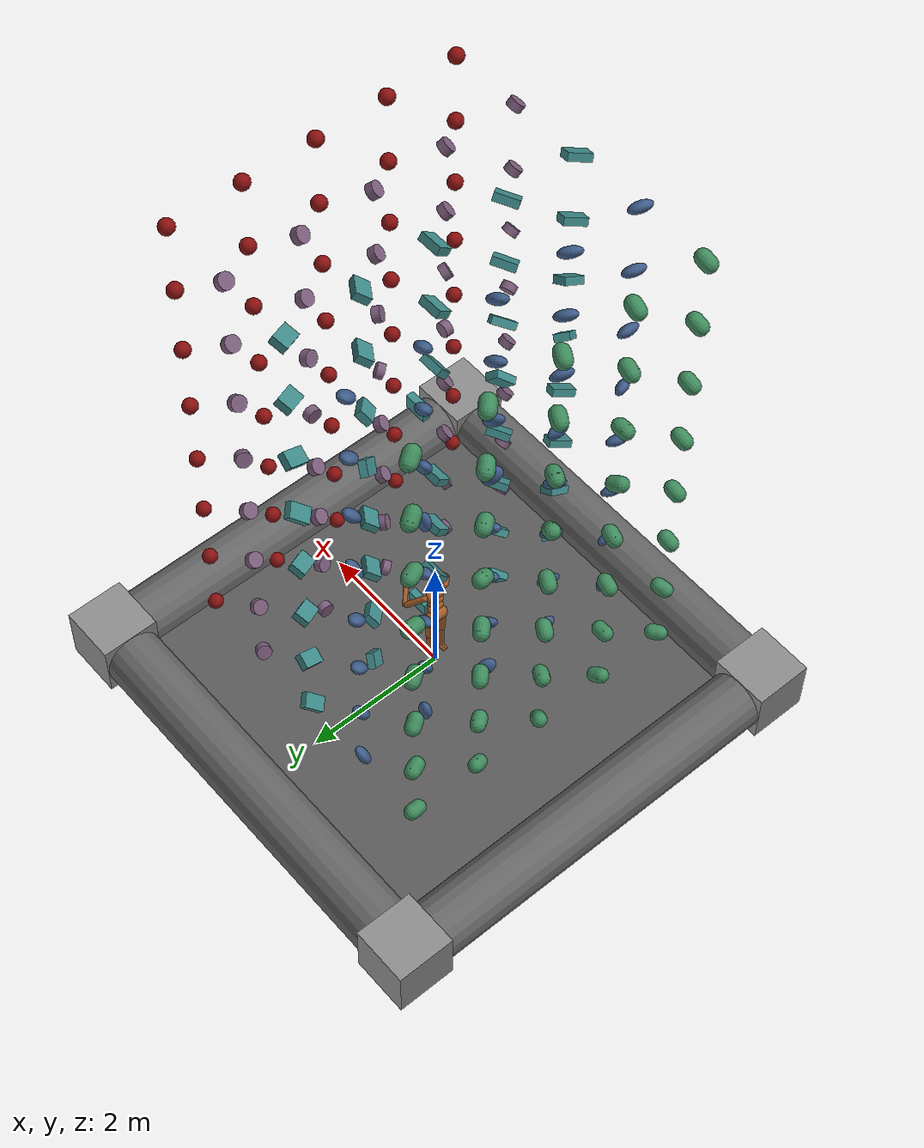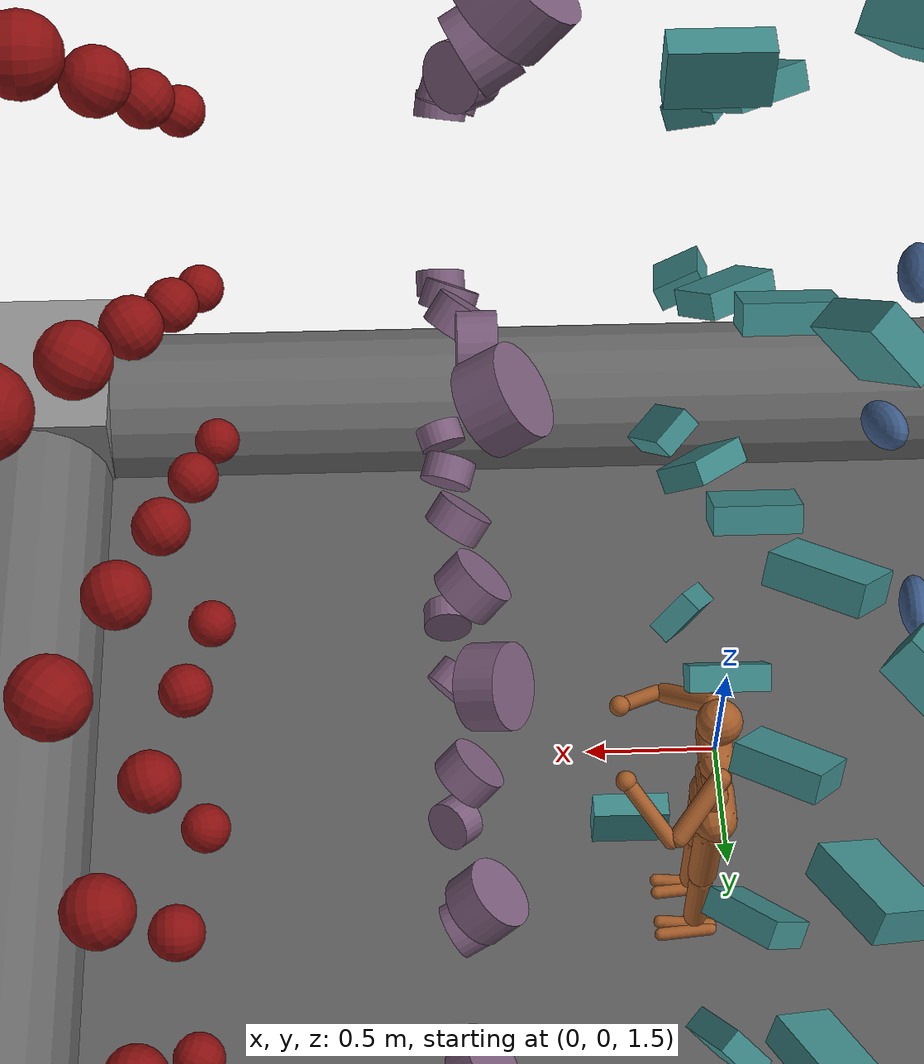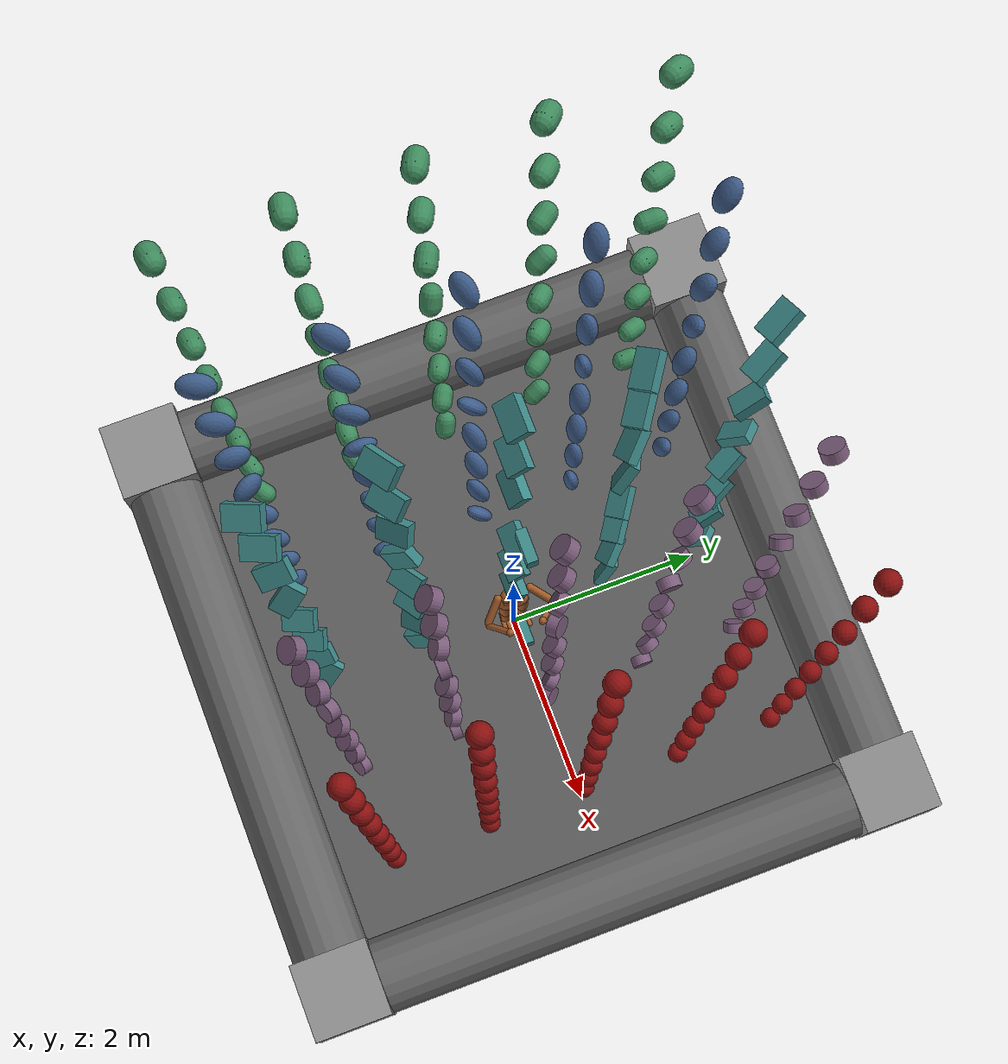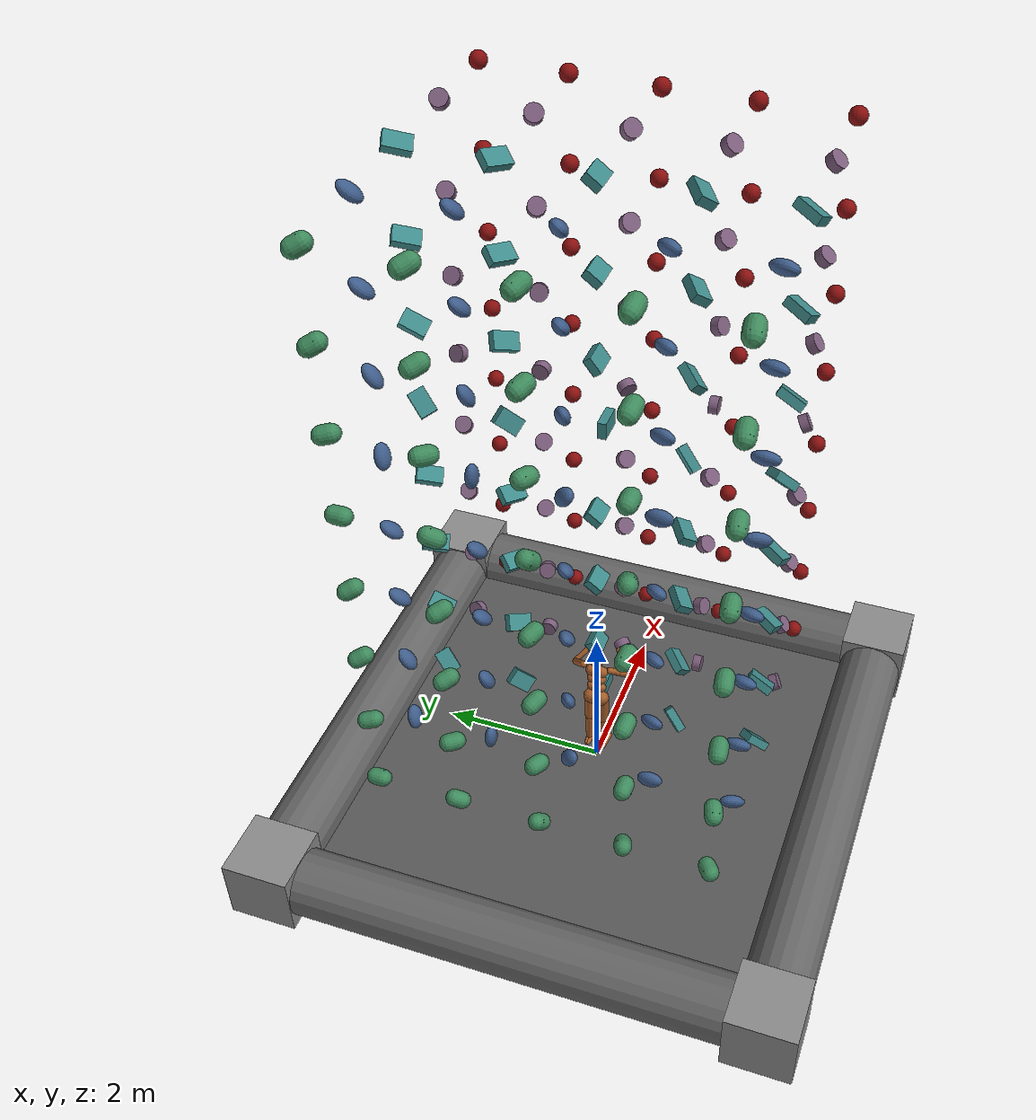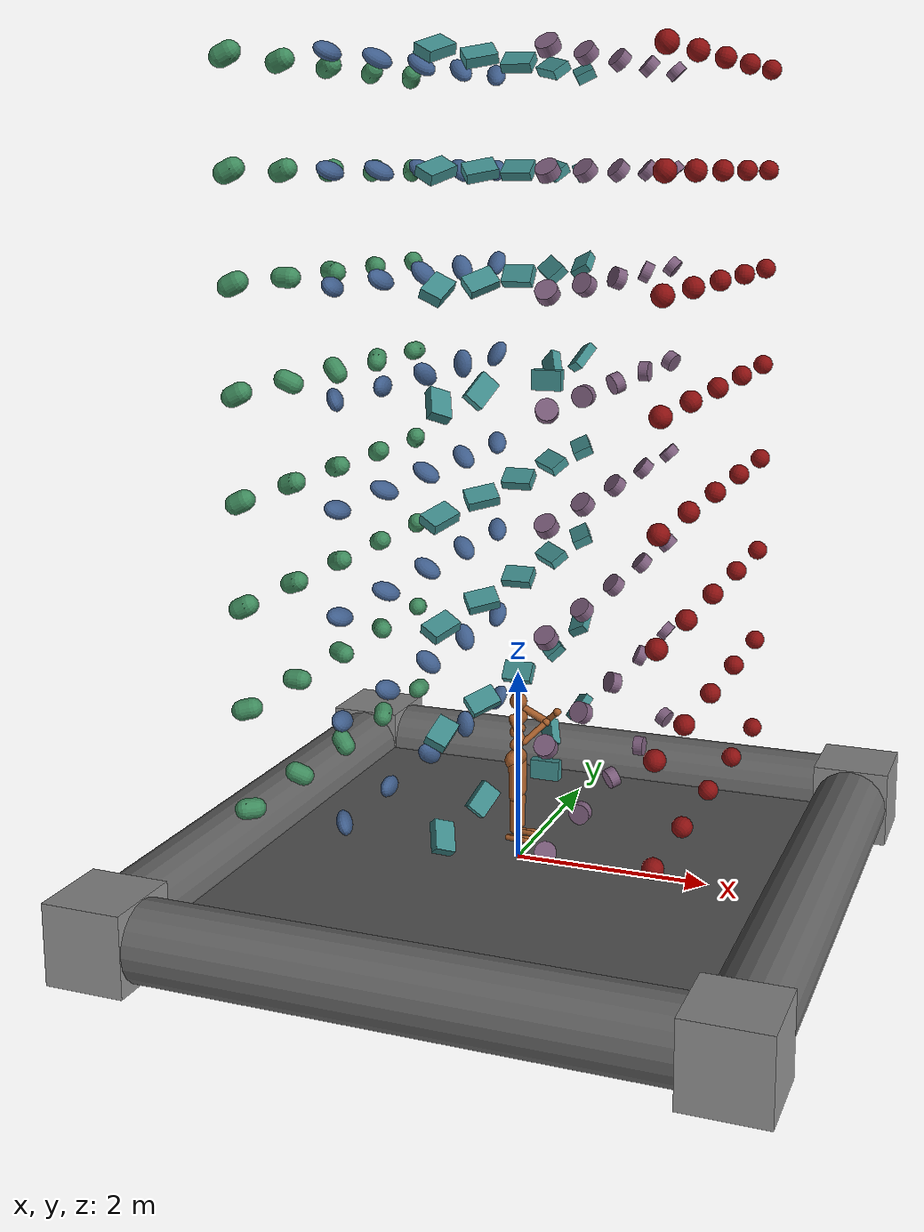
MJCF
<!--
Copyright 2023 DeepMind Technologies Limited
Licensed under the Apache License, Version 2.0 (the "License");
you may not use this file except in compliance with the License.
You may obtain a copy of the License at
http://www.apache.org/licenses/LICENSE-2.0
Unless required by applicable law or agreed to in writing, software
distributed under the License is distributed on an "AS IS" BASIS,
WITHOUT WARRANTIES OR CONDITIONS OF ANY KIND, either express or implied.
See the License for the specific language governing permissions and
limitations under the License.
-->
<mujoco model="Humanoid and 200 objects">
<!-- Degree of Freedom: 627
     Actuators: 21

     Humanoid and 200 free primitive objects.
-->
  <include file="humanoid_body.xml"/>

  <option timestep="0.005"/>

  <size memory="1000M"/>

  <default>
    <geom solimp=".9 .9 .01"/>
    <default class="object1">
      <geom type="capsule" material="object1" size="0.1 0.05"/>
    </default>
    <default class="object2">
      <geom type="ellipsoid" material="object2" size="0.15 0.1 0.07"/>
    </default>
    <default class="object3">
      <geom type="box" material="object3" size="0.15 0.1 0.05"/>
    </default>
    <default class="object4">
      <geom type="cylinder" material="object4" size="0.1 0.05" condim="4" friction="1 .01 .01"/>
    </default>
    <default class="object5">
      <geom type="sphere" material="object5" size="0.1"/>
    </default>
    <default class="border">
      <geom type="capsule" size="0.4" rgba=".4 .4 .4 1"/>
    </default>
    <default class="borderpost">
      <geom type="box" size="0.41 0.41 0.41" rgba=".55 .55 .55 1"/>
    </default>
  </default>

  <asset>
    <texture type="skybox" builtin="gradient" width="512" height="512" rgb1=".4 .6 .8" rgb2="0 0 0"/>
    <texture name="texgeom" type="cube" builtin="flat" mark="cross" width="128" height="128"
             rgb1="0.6 0.6 0.6" rgb2="0.6 0.6 0.6" markrgb="1 1 1"/>
    <texture name="texplane" type="2d" builtin="checker" rgb1=".4 .4 .4" rgb2=".6 .6 .6"
             width="512" height="512"/>
    <material name='MatPlane' reflectance='0.3' texture="texplane" texrepeat="1 1" texuniform="true"
              rgba=".7 .7 .7 1"/>
    <material name='object1' texture="texgeom" texuniform="true" rgba=".4 .9 .6 1" />
    <material name='object2' texture="texgeom" texuniform="true" rgba=".4 .6 .9 1" />
    <material name='object3' texture="texgeom" texuniform="true" rgba=".4 .9 .9 1" />
    <material name='object4' texture="texgeom" texuniform="true" rgba=".8 .6 .8 1" />
    <material name='object5' texture="texgeom" texuniform="true" rgba=".9 .1 .1 1" />
  </asset>

  <visual>
    <quality shadowsize="4096" offsamples="8"/>
    <map znear="0.1" force="0.05"/>
  </visual>

  <statistic extent="4"/>

  <worldbody>
    <light directional="true" diffuse=".8 .8 .8" pos="0 0 10" dir="0 0 -10"/>
    <geom name="floor" type="plane" size="3 3 .5" material="MatPlane"/>
    <geom class="border" fromto="-3 3 0 3 3 0"  />
    <geom class="border" fromto="-3 -3 0 3 -3 0"  />
    <geom class="border" fromto="3 3 0 3 -3 0"  />
    <geom class="border" fromto="-3 3 0 -3 -3 0"  />
    <geom class="borderpost" pos="3 3 0"/>
    <geom class="borderpost" pos="-3 3 0"/>
    <geom class="borderpost" pos="3 -3 0"/>
    <geom class="borderpost" pos="-3 -3 0"/>

    <body pos="-2 -2 1" quat="-0.632456 -0.632456 0.316228 0.316228">
      <freejoint/>
      <geom class="object1"/>
    </body>
    <body pos="-2 -2 2" quat="-0.5547 -0.5547 0.5547 0.27735">
      <freejoint/>
      <geom class="object1"/>
    </body>
    <body pos="-2 -2 3" quat="-0.471405 -0.471405 0.707107 0.235702">
      <freejoint/>
      <geom class="object1"/>
    </body>
    <body pos="-2 -2 4" quat="-0.471405 -0.471405 0.707107 0.235702">
      <freejoint/>
      <geom class="object1"/>
    </body>
    <body pos="-2 -2 5" quat="-0.471405 -0.471405 0.707107 0.235702">
      <freejoint/>
      <geom class="object1"/>
    </body>
    <body pos="-2 -2 6" quat="-0.471405 -0.471405 0.707107 0.235702">
      <freejoint/>
      <geom class="object1"/>
    </body>
    <body pos="-2 -2 7" quat="-0.471405 -0.471405 0.707107 0.235702">
      <freejoint/>
      <geom class="object1"/>
    </body>
    <body pos="-2 -2 8" quat="-0.471405 -0.471405 0.707107 0.235702">
      <freejoint/>
      <geom class="object1"/>
    </body>

    <body pos="-2 -1 1" quat="-0.755929 -0.377964 0.377964 0.377964">
      <freejoint/>
      <geom class="object1"/>
    </body>
    <body pos="-2 -1 2" quat="-0.632456 -0.316228 0.632456 0.316228">
      <freejoint/>
      <geom class="object1"/>
    </body>
    <body pos="-2 -1 3" quat="-0.516398 -0.258199 0.774597 0.258199">
      <freejoint/>
      <geom class="object1"/>
    </body>
    <body pos="-2 -1 4" quat="-0.516398 -0.258199 0.774597 0.258199">
      <freejoint/>
      <geom class="object1"/>
    </body>
    <body pos="-2 -1 5" quat="-0.755929 -0.377964 0.377964 0.377964">
      <freejoint/>
      <geom class="object1"/>
    </body>
    <body pos="-2 -1 6" quat="-0.632456 -0.316228 0.632456 0.316228">
      <freejoint/>
      <geom class="object1"/>
    </body>
    <body pos="-2 -1 7" quat="-0.516398 -0.258199 0.774597 0.258199">
      <freejoint/>
      <geom class="object1"/>
    </body>
    <body pos="-2 -1 8" quat="-0.516398 -0.258199 0.774597 0.258199">
      <freejoint/>
      <geom class="object1"/>
    </body>

    <body pos="-2 0 1" quat="-0.816497 0 0.408248 0.408248">
      <freejoint/>
      <geom class="object1"/>
    </body>
    <body pos="-2 0 2" quat="-0.666667 0 0.666667 0.333333">
      <freejoint/>
      <geom class="object1"/>
    </body>
    <body pos="-2 0 3" quat="-0.534522 0 0.801784 0.267261">
      <freejoint/>
      <geom class="object1"/>
    </body>
    <body pos="-2 0 4" quat="-0.534522 0 0.801784 0.267261">
      <freejoint/>
      <geom class="object1"/>
    </body>
    <body pos="-2 0 5" quat="-0.816497 0 0.408248 0.408248">
      <freejoint/>
      <geom class="object1"/>
    </body>
    <body pos="-2 0 6" quat="-0.666667 0 0.666667 0.333333">
      <freejoint/>
      <geom class="object1"/>
    </body>
    <body pos="-2 0 7" quat="-0.534522 0 0.801784 0.267261">
      <freejoint/>
      <geom class="object1"/>
    </body>
    <body pos="-2 0 8" quat="-0.534522 0 0.801784 0.267261">
      <freejoint/>
      <geom class="object1"/>
    </body>

    <body pos="-2 1 1" quat="-0.755929 0.377964 0.377964 0.377964">
      <freejoint/>
      <geom class="object1"/>
    </body>
    <body pos="-2 1 2" quat="-0.632456 0.316228 0.632456 0.316228">
      <freejoint/>
      <geom class="object1"/>
    </body>
    <body pos="-2 1 3" quat="-0.516398 0.258199 0.774597 0.258199">
      <freejoint/>
      <geom class="object1"/>
    </body>
    <body pos="-2 1 4" quat="-0.516398 0.258199 0.774597 0.258199">
      <freejoint/>
      <geom class="object1"/>
    </body>
    <body pos="-2 1 5" quat="-0.755929 0.377964 0.377964 0.377964">
      <freejoint/>
      <geom class="object1"/>
    </body>
    <body pos="-2 1 6" quat="-0.632456 0.316228 0.632456 0.316228">
      <freejoint/>
      <geom class="object1"/>
    </body>
    <body pos="-2 1 7" quat="-0.516398 0.258199 0.774597 0.258199">
      <freejoint/>
      <geom class="object1"/>
    </body>
    <body pos="-2 1 8" quat="-0.516398 0.258199 0.774597 0.258199">
      <freejoint/>
      <geom class="object1"/>
    </body>

    <body pos="-2 2 1" quat="-0.632456 0.632456 0.316228 0.316228">
      <freejoint/>
      <geom class="object1"/>
    </body>
    <body pos="-2 2 2" quat="-0.5547 0.5547 0.5547 0.27735">
      <freejoint/>
      <geom class="object1"/>
    </body>
    <body pos="-2 2 3" quat="-0.471405 0.471405 0.707107 0.235702">
      <freejoint/>
      <geom class="object1"/>
    </body>
    <body pos="-2 2 4" quat="-0.471405 0.471405 0.707107 0.235702">
      <freejoint/>
      <geom class="object1"/>
    </body>
    <body pos="-2 2 5" quat="-0.632456 0.632456 0.316228 0.316228">
      <freejoint/>
      <geom class="object1"/>
    </body>
    <body pos="-2 2 6" quat="-0.5547 0.5547 0.5547 0.27735">
      <freejoint/>
      <geom class="object1"/>
    </body>
    <body pos="-2 2 7" quat="-0.471405 0.471405 0.707107 0.235702">
      <freejoint/>
      <geom class="object1"/>
    </body>
    <body pos="-2 2 8" quat="-0.471405 0.471405 0.707107 0.235702">
      <freejoint/>
      <geom class="object1"/>
    </body>

    <body pos="-1 -2 1" quat="-0.377964 -0.755929 0.377964 0.377964">
      <freejoint/>
      <geom class="object2"/>
    </body>
    <body pos="-1 -2 2" quat="-0.316228 -0.632456 0.632456 0.316228">
      <freejoint/>
      <geom class="object2"/>
    </body>
    <body pos="-1 -2 3" quat="-0.258199 -0.516398 0.774597 0.258199">
      <freejoint/>
      <geom class="object2"/>
    </body>
    <body pos="-1 -2 4" quat="-0.258199 -0.516398 0.774597 0.258199">
      <freejoint/>
      <geom class="object2"/>
    </body>
    <body pos="-1 -2 5" quat="-0.377964 -0.755929 0.377964 0.377964">
      <freejoint/>
      <geom class="object2"/>
    </body>
    <body pos="-1 -2 6" quat="-0.316228 -0.632456 0.632456 0.316228">
      <freejoint/>
      <geom class="object2"/>
    </body>
    <body pos="-1 -2 7" quat="-0.258199 -0.516398 0.774597 0.258199">
      <freejoint/>
      <geom class="object2"/>
    </body>
    <body pos="-1 -2 8" quat="-0.258199 -0.516398 0.774597 0.258199">
      <freejoint/>
      <geom class="object2"/>
    </body>

    <body pos="-1 -1 1" quat="-0.5 -0.5 0.5 0.5">
      <freejoint/>
      <geom class="object2"/>
    </body>
    <body pos="-1 -1 2" quat="-0.377964 -0.377964 0.755929 0.377964">
      <freejoint/>
      <geom class="object2"/>
    </body>
    <body pos="-1 -1 3" quat="-0.288675 -0.288675 0.866025 0.288675">
      <freejoint/>
      <geom class="object2"/>
    </body>
    <body pos="-1 -1 4" quat="-0.288675 -0.288675 0.866025 0.288675">
      <freejoint/>
      <geom class="object2"/>
    </body>
    <body pos="-1 -1 5" quat="-0.5 -0.5 0.5 0.5">
      <freejoint/>
      <geom class="object2"/>
    </body>
    <body pos="-1 -1 6" quat="-0.377964 -0.377964 0.755929 0.377964">
      <freejoint/>
      <geom class="object2"/>
    </body>
    <body pos="-1 -1 7" quat="-0.288675 -0.288675 0.866025 0.288675">
      <freejoint/>
      <geom class="object2"/>
    </body>
    <body pos="-1 -1 8" quat="-0.288675 -0.288675 0.866025 0.288675">
      <freejoint/>
      <geom class="object2"/>
    </body>

    <body pos="-1 0 1" quat="-0.57735 0 0.57735 0.57735">
      <freejoint/>
      <geom class="object2"/>
    </body>
    <body pos="-1 0 2" quat="-0.408248 0 0.816497 0.408248">
      <freejoint/>
      <geom class="object2"/>
    </body>
    <body pos="-1 0 3" quat="-0.301511 0 0.904534 0.301511">
      <freejoint/>
      <geom class="object2"/>
    </body>
    <body pos="-1 0 4" quat="-0.301511 0 0.904534 0.301511">
      <freejoint/>
      <geom class="object2"/>
    </body>
    <body pos="-1 0 5" quat="-0.57735 0 0.57735 0.57735">
      <freejoint/>
      <geom class="object2"/>
    </body>
    <body pos="-1 0 6" quat="-0.408248 0 0.816497 0.408248">
      <freejoint/>
      <geom class="object2"/>
    </body>
    <body pos="-1 0 7" quat="-0.301511 0 0.904534 0.301511">
      <freejoint/>
      <geom class="object2"/>
    </body>
    <body pos="-1 0 8" quat="-0.301511 0 0.904534 0.301511">
      <freejoint/>
      <geom class="object2"/>
    </body>

    <body pos="-1 1 1" quat="-0.5 0.5 0.5 0.5">
      <freejoint/>
      <geom class="object2"/>
    </body>
    <body pos="-1 1 2" quat="-0.377964 0.377964 0.755929 0.377964">
      <freejoint/>
      <geom class="object2"/>
    </body>
    <body pos="-1 1 3" quat="-0.288675 0.288675 0.866025 0.288675">
      <freejoint/>
      <geom class="object2"/>
    </body>
    <body pos="-1 1 4" quat="-0.288675 0.288675 0.866025 0.288675">
      <freejoint/>
      <geom class="object2"/>
    </body>
    <body pos="-1 1 5" quat="-0.5 0.5 0.5 0.5">
      <freejoint/>
      <geom class="object2"/>
    </body>
    <body pos="-1 1 6" quat="-0.377964 0.377964 0.755929 0.377964">
      <freejoint/>
      <geom class="object2"/>
    </body>
    <body pos="-1 1 7" quat="-0.288675 0.288675 0.866025 0.288675">
      <freejoint/>
      <geom class="object2"/>
    </body>
    <body pos="-1 1 8" quat="-0.288675 0.288675 0.866025 0.288675">
      <freejoint/>
      <geom class="object2"/>
    </body>

    <body pos="-1 2 1" quat="-0.377964 0.755929 0.377964 0.377964">
      <freejoint/>
      <geom class="object2"/>
    </body>
    <body pos="-1 2 2" quat="-0.316228 0.632456 0.632456 0.316228">
      <freejoint/>
      <geom class="object2"/>
    </body>
    <body pos="-1 2 3" quat="-0.258199 0.516398 0.774597 0.258199">
      <freejoint/>
      <geom class="object2"/>
    </body>
    <body pos="-1 2 4" quat="-0.258199 0.516398 0.774597 0.258199">
      <freejoint/>
      <geom class="object2"/>
    </body>
    <body pos="-1 2 5" quat="-0.377964 0.755929 0.377964 0.377964">
      <freejoint/>
      <geom class="object2"/>
    </body>
    <body pos="-1 2 6" quat="-0.316228 0.632456 0.632456 0.316228">
      <freejoint/>
      <geom class="object2"/>
    </body>
    <body pos="-1 2 7" quat="-0.258199 0.516398 0.774597 0.258199">
      <freejoint/>
      <geom class="object2"/>
    </body>
    <body pos="-1 2 8" quat="-0.258199 0.516398 0.774597 0.258199">
      <freejoint/>
      <geom class="object2"/>
    </body>

    <body pos="0 -2 1" quat="0 -0.816497 0.408248 0.408248">
      <freejoint/>
      <geom class="object3"/>
    </body>
    <body pos="0 -2 2" quat="0 -0.666667 0.666667 0.333333">
      <freejoint/>
      <geom class="object3"/>
    </body>
    <body pos="0 -2 3" quat="0 -0.534522 0.801784 0.267261">
      <freejoint/>
      <geom class="object3"/>
    </body>
    <body pos="0 -2 4" quat="0 -0.534522 0.801784 0.267261">
      <freejoint/>
      <geom class="object3"/>
    </body>
    <body pos="0 -2 5" quat="0 -0.816497 0.408248 0.408248">
      <freejoint/>
      <geom class="object3"/>
    </body>
    <body pos="0 -2 6" quat="0 -0.666667 0.666667 0.333333">
      <freejoint/>
      <geom class="object3"/>
    </body>
    <body pos="0 -2 7" quat="0 -0.534522 0.801784 0.267261">
      <freejoint/>
      <geom class="object3"/>
    </body>
    <body pos="0 -2 8" quat="0 -0.534522 0.801784 0.267261">
      <freejoint/>
      <geom class="object3"/>
    </body>

    <body pos="0 -1 1" quat="0 -0.57735 0.57735 0.57735">
      <freejoint/>
      <geom class="object3"/>
    </body>
    <body pos="0 -1 2" quat="0 -0.408248 0.816497 0.408248">
      <freejoint/>
      <geom class="object3"/>
    </body>
    <body pos="0 -1 3" quat="0 -0.301511 0.904534 0.301511">
      <freejoint/>
      <geom class="object3"/>
    </body>
    <body pos="0 -1 4" quat="0 -0.301511 0.904534 0.301511">
      <freejoint/>
      <geom class="object3"/>
    </body>
    <body pos="0 -1 5" quat="0 -0.57735 0.57735 0.57735">
      <freejoint/>
      <geom class="object3"/>
    </body>
    <body pos="0 -1 6" quat="0 -0.408248 0.816497 0.408248">
      <freejoint/>
      <geom class="object3"/>
    </body>
    <body pos="0 -1 7" quat="0 -0.301511 0.904534 0.301511">
      <freejoint/>
      <geom class="object3"/>
    </body>
    <body pos="0 -1 8" quat="0 -0.301511 0.904534 0.301511">
      <freejoint/>
      <geom class="object3"/>
    </body>

    <body pos="0.3 0 1" quat="0 0 0.707107 0.707107">
      <freejoint/>
      <geom class="object3"/>
    </body>
    <body pos="0 0 2" quat="0 0 0.894427 0.447214">
      <freejoint/>
      <geom class="object3"/>
    </body>
    <body pos="0 0 3" quat="0 0 0.948683 0.316228">
      <freejoint/>
      <geom class="object3"/>
    </body>
    <body pos="0 0 4" quat="0 0 0.948683 0.316228">
      <freejoint/>
      <geom class="object3"/>
    </body>
    <body pos="0.3 0 5" quat="0 0 0.707107 0.707107">
      <freejoint/>
      <geom class="object3"/>
    </body>
    <body pos="0 0 6" quat="0 0 0.894427 0.447214">
      <freejoint/>
      <geom class="object3"/>
    </body>
    <body pos="0 0 7" quat="0 0 0.948683 0.316228">
      <freejoint/>
      <geom class="object3"/>
    </body>
    <body pos="0 0 8" quat="0 0 0.948683 0.316228">
      <freejoint/>
      <geom class="object3"/>
    </body>

    <body pos="0 1 1" quat="0 0.57735 0.57735 0.57735">
      <freejoint/>
      <geom class="object3"/>
    </body>
    <body pos="0 1 2" quat="0 0.408248 0.816497 0.408248">
      <freejoint/>
      <geom class="object3"/>
    </body>
    <body pos="0 1 3" quat="0 0.301511 0.904534 0.301511">
      <freejoint/>
      <geom class="object3"/>
    </body>
    <body pos="0 1 4" quat="0 0.301511 0.904534 0.301511">
      <freejoint/>
      <geom class="object3"/>
    </body>
    <body pos="0 1 5" quat="0 0.57735 0.57735 0.57735">
      <freejoint/>
      <geom class="object3"/>
    </body>
    <body pos="0 1 6" quat="0 0.408248 0.816497 0.408248">
      <freejoint/>
      <geom class="object3"/>
    </body>
    <body pos="0 1 7" quat="0 0.301511 0.904534 0.301511">
      <freejoint/>
      <geom class="object3"/>
    </body>
    <body pos="0 1 8" quat="0 0.301511 0.904534 0.301511">
      <freejoint/>
      <geom class="object3"/>
    </body>

    <body pos="0 2 1" quat="0 0.816497 0.408248 0.408248">
      <freejoint/>
      <geom class="object3"/>
    </body>
    <body pos="0 2 2" quat="0 0.666667 0.666667 0.333333">
      <freejoint/>
      <geom class="object3"/>
    </body>
    <body pos="0 2 3" quat="0 0.534522 0.801784 0.267261">
      <freejoint/>
      <geom class="object3"/>
    </body>
    <body pos="0 2 4" quat="0 0.534522 0.801784 0.267261">
      <freejoint/>
      <geom class="object3"/>
    </body>
    <body pos="0 2 5" quat="0 0.816497 0.408248 0.408248">
      <freejoint/>
      <geom class="object3"/>
    </body>
    <body pos="0 2 6" quat="0 0.666667 0.666667 0.333333">
      <freejoint/>
      <geom class="object3"/>
    </body>
    <body pos="0 2 7" quat="0 0.534522 0.801784 0.267261">
      <freejoint/>
      <geom class="object3"/>
    </body>
    <body pos="0 2 8" quat="0 0.534522 0.801784 0.267261">
      <freejoint/>
      <geom class="object3"/>
    </body>

    <body pos="1 -2 1" quat="0.377964 -0.755929 0.377964 0.377964">
      <freejoint/>
      <geom class="object4"/>
    </body>
    <body pos="1 -2 2" quat="0.316228 -0.632456 0.632456 0.316228">
      <freejoint/>
      <geom class="object4"/>
    </body>
    <body pos="1 -2 3" quat="0.258199 -0.516398 0.774597 0.258199">
      <freejoint/>
      <geom class="object4"/>
    </body>
    <body pos="1 -2 4" quat="0.258199 -0.516398 0.774597 0.258199">
      <freejoint/>
      <geom class="object4"/>
    </body>
    <body pos="1 -2 5" quat="0.377964 -0.755929 0.377964 0.377964">
      <freejoint/>
      <geom class="object4"/>
    </body>
    <body pos="1 -2 6" quat="0.316228 -0.632456 0.632456 0.316228">
      <freejoint/>
      <geom class="object4"/>
    </body>
    <body pos="1 -2 7" quat="0.258199 -0.516398 0.774597 0.258199">
      <freejoint/>
      <geom class="object4"/>
    </body>
    <body pos="1 -2 8" quat="0.258199 -0.516398 0.774597 0.258199">
      <freejoint/>
      <geom class="object4"/>
    </body>

    <body pos="1 -1 1" quat="0.5 -0.5 0.5 0.5">
      <freejoint/>
      <geom class="object4"/>
    </body>
    <body pos="1 -1 2" quat="0.377964 -0.377964 0.755929 0.377964">
      <freejoint/>
      <geom class="object4"/>
    </body>
    <body pos="1 -1 3" quat="0.288675 -0.288675 0.866025 0.288675">
      <freejoint/>
      <geom class="object4"/>
    </body>
    <body pos="1 -1 4" quat="0.288675 -0.288675 0.866025 0.288675">
      <freejoint/>
      <geom class="object4"/>
    </body>
    <body pos="1 -1 5" quat="0.5 -0.5 0.5 0.5">
      <freejoint/>
      <geom class="object4"/>
    </body>
    <body pos="1 -1 6" quat="0.377964 -0.377964 0.755929 0.377964">
      <freejoint/>
      <geom class="object4"/>
    </body>
    <body pos="1 -1 7" quat="0.288675 -0.288675 0.866025 0.288675">
      <freejoint/>
      <geom class="object4"/>
    </body>
    <body pos="1 -1 8" quat="0.288675 -0.288675 0.866025 0.288675">
      <freejoint/>
      <geom class="object4"/>
    </body>

    <body pos="1 0 1" quat="0.57735 0 0.57735 0.57735">
      <freejoint/>
      <geom class="object4"/>
    </body>
    <body pos="1 0 2" quat="0.408248 0 0.816497 0.408248">
      <freejoint/>
      <geom class="object4"/>
    </body>
    <body pos="1 0 3" quat="0.301511 0 0.904534 0.301511">
      <freejoint/>
      <geom class="object4"/>
    </body>
    <body pos="1 0 4" quat="0.301511 0 0.904534 0.301511">
      <freejoint/>
      <geom class="object4"/>
    </body>
    <body pos="1 0 5" quat="0.57735 0 0.57735 0.57735">
      <freejoint/>
      <geom class="object4"/>
    </body>
    <body pos="1 0 6" quat="0.408248 0 0.816497 0.408248">
      <freejoint/>
      <geom class="object4"/>
    </body>
    <body pos="1 0 7" quat="0.301511 0 0.904534 0.301511">
      <freejoint/>
      <geom class="object4"/>
    </body>
    <body pos="1 0 8" quat="0.301511 0 0.904534 0.301511">
      <freejoint/>
      <geom class="object4"/>
    </body>

    <body pos="1 1 1" quat="0.5 0.5 0.5 0.5">
      <freejoint/>
      <geom class="object4"/>
    </body>
    <body pos="1 1 2" quat="0.377964 0.377964 0.755929 0.377964">
      <freejoint/>
      <geom class="object4"/>
    </body>
    <body pos="1 1 3" quat="0.288675 0.288675 0.866025 0.288675">
      <freejoint/>
      <geom class="object4"/>
    </body>
    <body pos="1 1 4" quat="0.288675 0.288675 0.866025 0.288675">
      <freejoint/>
      <geom class="object4"/>
    </body>
    <body pos="1 1 5" quat="0.5 0.5 0.5 0.5">
      <freejoint/>
      <geom class="object4"/>
    </body>
    <body pos="1 1 6" quat="0.377964 0.377964 0.755929 0.377964">
      <freejoint/>
      <geom class="object4"/>
    </body>
    <body pos="1 1 7" quat="0.288675 0.288675 0.866025 0.288675">
      <freejoint/>
      <geom class="object4"/>
    </body>
    <body pos="1 1 8" quat="0.288675 0.288675 0.866025 0.288675">
      <freejoint/>
      <geom class="object4"/>
    </body>

    <body pos="1 2 1" quat="0.377964 0.755929 0.377964 0.377964">
      <freejoint/>
      <geom class="object4"/>
    </body>
    <body pos="1 2 2" quat="0.316228 0.632456 0.632456 0.316228">
      <freejoint/>
      <geom class="object4"/>
    </body>
    <body pos="1 2 3" quat="0.258199 0.516398 0.774597 0.258199">
      <freejoint/>
      <geom class="object4"/>
    </body>
    <body pos="1 2 4" quat="0.258199 0.516398 0.774597 0.258199">
      <freejoint/>
      <geom class="object4"/>
    </body>
    <body pos="1 2 5" quat="0.377964 0.755929 0.377964 0.377964">
      <freejoint/>
      <geom class="object4"/>
    </body>
    <body pos="1 2 6" quat="0.316228 0.632456 0.632456 0.316228">
      <freejoint/>
      <geom class="object4"/>
    </body>
    <body pos="1 2 7" quat="0.258199 0.516398 0.774597 0.258199">
      <freejoint/>
      <geom class="object4"/>
    </body>
    <body pos="1 2 8" quat="0.258199 0.516398 0.774597 0.258199">
      <freejoint/>
      <geom class="object4"/>
    </body>

    <body pos="2 -2 1" quat="0.632456 -0.632456 0.316228 0.316228">
      <freejoint/>
      <geom class="object5"/>
    </body>
    <body pos="2 -2 2" quat="0.5547 -0.5547 0.5547 0.27735">
      <freejoint/>
      <geom class="object5"/>
    </body>
    <body pos="2 -2 3" quat="0.471405 -0.471405 0.707107 0.235702">
      <freejoint/>
      <geom class="object5"/>
    </body>
    <body pos="2 -2 4" quat="0.471405 -0.471405 0.707107 0.235702">
      <freejoint/>
      <geom class="object5"/>
    </body>
    <body pos="2 -2 5" quat="0.632456 -0.632456 0.316228 0.316228">
      <freejoint/>
      <geom class="object5"/>
    </body>
    <body pos="2 -2 6" quat="0.5547 -0.5547 0.5547 0.27735">
      <freejoint/>
      <geom class="object5"/>
    </body>
    <body pos="2 -2 7" quat="0.471405 -0.471405 0.707107 0.235702">
      <freejoint/>
      <geom class="object5"/>
    </body>
    <body pos="2 -2 8" quat="0.471405 -0.471405 0.707107 0.235702">
      <freejoint/>
      <geom class="object5"/>
    </body>

    <body pos="2 -1 1" quat="0.755929 -0.377964 0.377964 0.377964">
      <freejoint/>
      <geom class="object5"/>
    </body>
    <body pos="2 -1 2" quat="0.632456 -0.316228 0.632456 0.316228">
      <freejoint/>
      <geom class="object5"/>
    </body>
    <body pos="2 -1 3" quat="0.516398 -0.258199 0.774597 0.258199">
      <freejoint/>
      <geom class="object5"/>
    </body>
    <body pos="2 -1 4" quat="0.516398 -0.258199 0.774597 0.258199">
      <freejoint/>
      <geom class="object5"/>
    </body>
    <body pos="2 -1 5" quat="0.755929 -0.377964 0.377964 0.377964">
      <freejoint/>
      <geom class="object5"/>
    </body>
    <body pos="2 -1 6" quat="0.632456 -0.316228 0.632456 0.316228">
      <freejoint/>
      <geom class="object5"/>
    </body>
    <body pos="2 -1 7" quat="0.516398 -0.258199 0.774597 0.258199">
      <freejoint/>
      <geom class="object5"/>
    </body>
    <body pos="2 -1 8" quat="0.516398 -0.258199 0.774597 0.258199">
      <freejoint/>
      <geom class="object5"/>
    </body>

    <body pos="2 0 1" quat="0.816497 0 0.408248 0.408248">
      <freejoint/>
      <geom class="object5"/>
    </body>
    <body pos="2 0 2" quat="0.666667 0 0.666667 0.333333">
      <freejoint/>
      <geom class="object5"/>
    </body>
    <body pos="2 0 3" quat="0.534522 0 0.801784 0.267261">
      <freejoint/>
      <geom class="object5"/>
    </body>
    <body pos="2 0 4" quat="0.534522 0 0.801784 0.267261">
      <freejoint/>
      <geom class="object5"/>
    </body>
    <body pos="2 0 5" quat="0.816497 0 0.408248 0.408248">
      <freejoint/>
      <geom class="object5"/>
    </body>
    <body pos="2 0 6" quat="0.666667 0 0.666667 0.333333">
      <freejoint/>
      <geom class="object5"/>
    </body>
    <body pos="2 0 7" quat="0.534522 0 0.801784 0.267261">
      <freejoint/>
      <geom class="object5"/>
    </body>
    <body pos="2 0 8" quat="0.534522 0 0.801784 0.267261">
      <freejoint/>
      <geom class="object5"/>
    </body>

    <body pos="2 1 1" quat="0.755929 0.377964 0.377964 0.377964">
      <freejoint/>
      <geom class="object5"/>
    </body>
    <body pos="2 1 2" quat="0.632456 0.316228 0.632456 0.316228">
      <freejoint/>
      <geom class="object5"/>
    </body>
    <body pos="2 1 3" quat="0.516398 0.258199 0.774597 0.258199">
      <freejoint/>
      <geom class="object5"/>
    </body>
    <body pos="2 1 4" quat="0.516398 0.258199 0.774597 0.258199">
      <freejoint/>
      <geom class="object5"/>
    </body>
    <body pos="2 1 5" quat="0.755929 0.377964 0.377964 0.377964">
      <freejoint/>
      <geom class="object5"/>
    </body>
    <body pos="2 1 6" quat="0.632456 0.316228 0.632456 0.316228">
      <freejoint/>
      <geom class="object5"/>
    </body>
    <body pos="2 1 7" quat="0.516398 0.258199 0.774597 0.258199">
      <freejoint/>
      <geom class="object5"/>
    </body>
    <body pos="2 1 8" quat="0.516398 0.258199 0.774597 0.258199">
      <freejoint/>
      <geom class="object5"/>
    </body>

    <body pos="2 2 1" quat="0.632456 0.632456 0.316228 0.316228">
      <freejoint/>
      <geom class="object5"/>
    </body>
    <body pos="2 2 2" quat="0.5547 0.5547 0.5547 0.27735">
      <freejoint/>
      <geom class="object5"/>
    </body>
    <body pos="2 2 3" quat="0.471405 0.471405 0.707107 0.235702">
      <freejoint/>
      <geom class="object5"/>
    </body>
    <body pos="2 2 4" quat="0.471405 0.471405 0.707107 0.235702">
      <freejoint/>
      <geom class="object5"/>
    </body>
    <body pos="2 2 5" quat="0.632456 0.632456 0.316228 0.316228">
      <freejoint/>
      <geom class="object5"/>
    </body>
    <body pos="2 2 6" quat="0.5547 0.5547 0.5547 0.27735">
      <freejoint/>
      <geom class="object5"/>
    </body>
    <body pos="2 2 7" quat="0.471405 0.471405 0.707107 0.235702">
      <freejoint/>
      <geom class="object5"/>
    </body>
    <body pos="2 2 8" quat="0.471405 0.471405 0.707107 0.235702">
      <freejoint/>
      <geom class="object5"/>
    </body>

  </worldbody>
</mujoco>

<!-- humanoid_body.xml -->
<mujoco model="Humanoid body">

  <asset>
    <texture type="skybox" builtin="gradient" rgb1=".3 .5 .7" rgb2="0 0 0" width="512" height="512"/>
    <texture name="body" type="cube" builtin="flat" mark="cross" width="128" height="128"
             rgb1="0.8 0.6 0.4" rgb2="0.8 0.6 0.4" markrgb="1 1 1"/>
    <material name="body" texture="body" texuniform="true" rgba="0.8 0.6 .4 1"/>
    <texture name="grid" type="2d" builtin="checker" width="512" height="512" rgb1=".1 .2 .3" rgb2=".2 .3 .4"/>
    <material name="grid" texture="grid" texrepeat="1 1" texuniform="true" reflectance=".2"/>
  </asset>

  <default>
    <motor ctrlrange="-1 1" ctrllimited="true"/>
    <default class="body">
      <geom type="capsule" condim="1" friction=".7" solimp=".9 .99 .003" solref=".015 1" material="body"/>
      <joint type="hinge" damping=".2" stiffness="1" armature=".01" limited="true" solimplimit="0 .99 .01"/>
      <default class="big_joint">
        <joint damping="5" stiffness="10"/>
        <default class="big_stiff_joint">
          <joint stiffness="20"/>
        </default>
      </default>
    </default>
  </default>

  <visual>
    <map force="0.1" zfar="30"/>
    <rgba haze="0.15 0.25 0.35 1"/>
    <quality shadowsize="4096"/>
    <global offwidth="800" offheight="800"/>
  </visual>

  <worldbody>
    <body name="torso" pos="0 0 1.5" childclass="body">
      <light name="top" pos="0 0 2" mode="trackcom"/>
      <camera name="back" pos="-3 0 1" xyaxes="0 -1 0 1 0 2" mode="trackcom"/>
      <camera name="side" pos="0 -3 1" xyaxes="1 0 0 0 1 2" mode="trackcom"/>
      <freejoint name="root"/>
      <geom name="torso" fromto="0 -.07 0 0 .07 0" size=".07"/>
      <geom name="upper_waist" fromto="-.01 -.06 -.12 -.01 .06 -.12" size=".06"/>
      <body name="head" pos="0 0 .19">
        <geom name="head" type="sphere" size=".09"/>
        <camera name="egocentric" pos=".09 0 0" xyaxes="0 -1 0 .1 0 1" fovy="80"/>
      </body>
      <body name="lower_waist" pos="-.01 0 -.26">
        <geom name="lower_waist" fromto="0 -.06 0 0 .06 0" size=".06"/>
        <joint name="abdomen_z" pos="0 0 .065" axis="0 0 1" range="-45 45" class="big_stiff_joint"/>
        <joint name="abdomen_y" pos="0 0 .065" axis="0 1 0" range="-75 30" class="big_joint"/>
        <body name="pelvis" pos="0 0 -.165">
          <joint name="abdomen_x" pos="0 0 .1" axis="1 0 0" range="-35 35" class="big_joint"/>
          <geom name="butt" fromto="-.02 -.07 0 -.02 .07 0" size=".09"/>
          <body name="right_thigh" pos="0 -.1 -.04">
            <joint name="right_hip_x" axis="1 0 0" range="-25 5" class="big_joint"/>
            <joint name="right_hip_z" axis="0 0 1" range="-60 35" class="big_joint"/>
            <joint name="right_hip_y" axis="0 1 0" range="-110 20" class="big_stiff_joint"/>
            <geom name="right_thigh" fromto="0 0 0 0 .01 -.34" size=".06"/>
            <body name="right_shin" pos="0 .01 -.403">
              <joint name="right_knee" pos="0 0 .02" axis="0 -1 0" range="-160 2"/>
              <geom name="right_shin" fromto="0 0 0 0 0 -.3"  size=".049"/>
              <body name="right_foot" pos="0 0 -.39">
                <joint name="right_ankle_y" pos="0 0 .08" axis="0 1 0" range="-50 50" stiffness="6"/>
                <joint name="right_ankle_x" pos="0 0 .04" axis="1 0 .5" range="-50 50" stiffness="3"/>
                <geom name="right_right_foot" fromto="-.07 -.02 0 .14 -.04 0" size=".027"/>
                <geom name="left_right_foot" fromto="-.07 0 0 .14  .02 0" size=".027"/>
              </body>
            </body>
          </body>
          <body name="left_thigh" pos="0 .1 -.04">
            <joint name="left_hip_x" axis="-1 0 0" range="-25 5" class="big_joint"/>
            <joint name="left_hip_z" axis="0 0 -1" range="-60 35" class="big_joint"/>
            <joint name="left_hip_y" axis="0 1 0" range="-110 20" class="big_stiff_joint"/>
            <geom name="left_thigh" fromto="0 0 0 0 -.01 -.34" size=".06"/>
            <body name="left_shin" pos="0 -.01 -.403">
              <joint name="left_knee" pos="0 0 .02" axis="0 -1 0" range="-160 2"/>
              <geom name="left_shin" fromto="0 0 0 0 0 -.3"  size=".049"/>
              <body name="left_foot" pos="0 0 -.39">
                <joint name="left_ankle_y" pos="0 0 .08" axis="0 1 0" range="-50 50" stiffness="6"/>
                <joint name="left_ankle_x" pos="0 0 .04" axis="1 0 .5" range="-50 50" stiffness="3"/>
                <geom name="left_left_foot" fromto="-.07 .02 0 .14 .04 0" size=".027"/>
                <geom name="right_left_foot" fromto="-.07 0 0 .14 -.02 0" size=".027"/>
              </body>
            </body>
          </body>
        </body>
      </body>
      <body name="right_upper_arm" pos="0 -.17 .06">
        <joint name="right_shoulder1" axis="2 1 1"  range="-85 60"/>
        <joint name="right_shoulder2" axis="0 -1 1" range="-85 60"/>
        <geom name="right_upper_arm" fromto="0 0 0 .16 -.16 -.16" size=".04 .16"/>
        <body name="right_lower_arm" pos=".18 -.18 -.18">
          <joint name="right_elbow" axis="0 -1 1" range="-90 50" stiffness="0"/>
          <geom name="right_lower_arm" fromto=".01 .01 .01 .17 .17 .17" size=".031"/>
          <body name="right_hand" pos=".18 .18 .18">
            <geom name="right_hand" type="sphere" size=".04" zaxis="1 1 1"/>
          </body>
        </body>
      </body>
      <body name="left_upper_arm" pos="0 .17 .06">
        <joint name="left_shoulder1" axis="2 -1 1" range="-60 85"/>
        <joint name="left_shoulder2" axis="0 1 1"  range="-60 85"/>
        <geom name="left_upper_arm" fromto="0 0 0 .16 .16 -.16" size=".04 .16"/>
        <body name="left_lower_arm" pos=".18 .18 -.18">
          <joint name="left_elbow" axis="0 -1 -1" range="-90 50" stiffness="0"/>
          <geom name="left_lower_arm" fromto=".01 -.01 .01 .17 -.17 .17" size=".031"/>
          <body name="left_hand" pos=".18 -.18 .18">
            <geom name="left_hand" type="sphere" size=".04" zaxis="1 -1 1"/>
          </body>
        </body>
      </body>
    </body>
  </worldbody>

  <actuator>
    <motor name="abdomen_y"       gear="40"  joint="abdomen_y"/>
    <motor name="abdomen_z"       gear="40"  joint="abdomen_z"/>
    <motor name="abdomen_x"       gear="40"  joint="abdomen_x"/>
    <motor name="right_hip_x"     gear="40"  joint="right_hip_x"/>
    <motor name="right_hip_z"     gear="40"  joint="right_hip_z"/>
    <motor name="right_hip_y"     gear="120" joint="right_hip_y"/>
    <motor name="right_knee"      gear="80"  joint="right_knee"/>
    <motor name="right_ankle_x"   gear="20"  joint="right_ankle_x"/>
    <motor name="right_ankle_y"   gear="20"  joint="right_ankle_y"/>
    <motor name="left_hip_x"      gear="40"  joint="left_hip_x"/>
    <motor name="left_hip_z"      gear="40"  joint="left_hip_z"/>
    <motor name="left_hip_y"      gear="120" joint="left_hip_y"/>
    <motor name="left_knee"       gear="80"  joint="left_knee"/>
    <motor name="left_ankle_x"    gear="20"  joint="left_ankle_x"/>
    <motor name="left_ankle_y"    gear="20"  joint="left_ankle_y"/>
    <motor name="right_shoulder1" gear="20"  joint="right_shoulder1"/>
    <motor name="right_shoulder2" gear="20"  joint="right_shoulder2"/>
    <motor name="right_elbow"     gear="40"  joint="right_elbow"/>
    <motor name="left_shoulder1"  gear="20"  joint="left_shoulder1"/>
    <motor name="left_shoulder2"  gear="20"  joint="left_shoulder2"/>
    <motor name="left_elbow"      gear="40"  joint="left_elbow"/>
  </actuator>
</mujoco>
